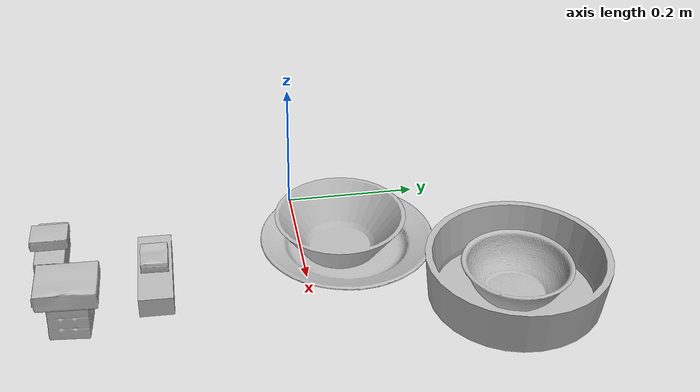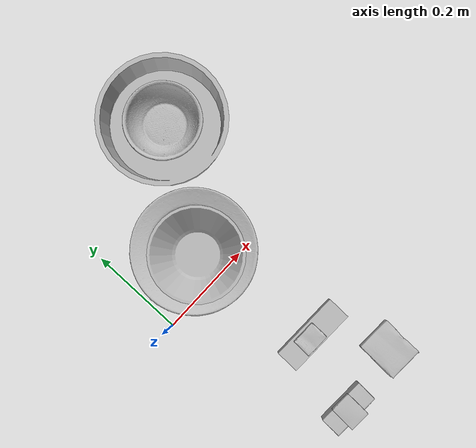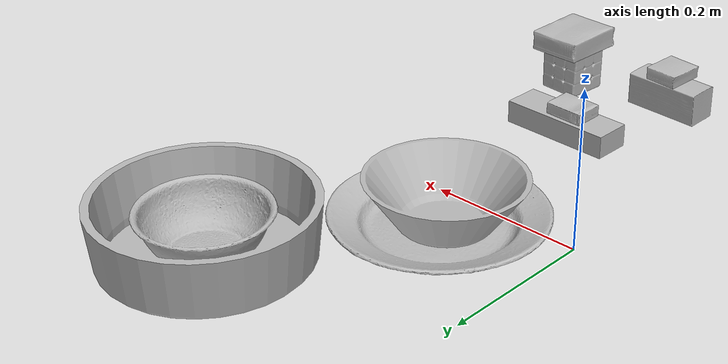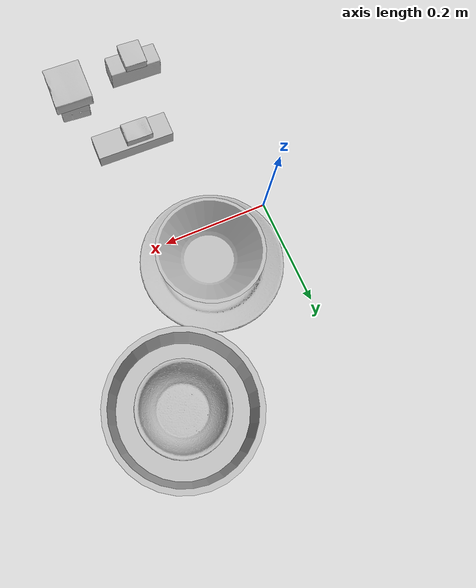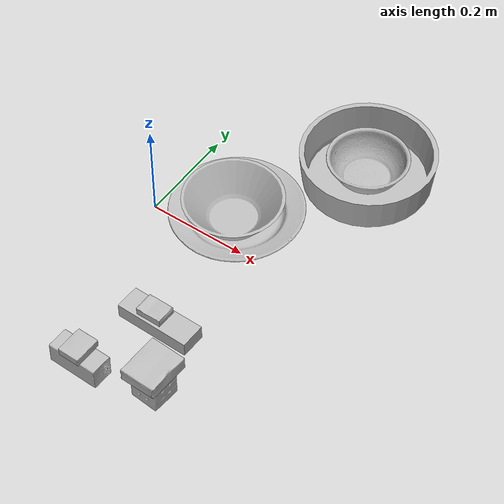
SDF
<?xml version="1.0" ?>
<sdf version="1.4">
  <world name="default">
    <light name="light1" type="point">
      <pose>0 0 1 0 0 0</pose>
      <diffuse>3 3 3 1</diffuse>
      <specular>3 3 3 1</specular>
    </light>
    <light name="light2" type="point">
      <pose>0 0.5 2 0 0 0</pose>
      <diffuse>1 1 1 1</diffuse>
      <specular>1 1 1 1</specular>
    </light>
    <light name="light3" type="point">
      <pose>0 0.5 2 0 0 0</pose>
      <diffuse>3 3 3 1</diffuse>
      <specular>3 3 3 1</specular>
    </light>
    <scene>
      <ambient>0.7 0.7 0.7</ambient>
    </scene>
    <model name="box1">
      <link name="link_box1">
        <collision name="default">
          <geometry>
            <mesh>
              <uri>model://rubiks_cube/collision_meshes/collision.obj</uri>
              <scale>1.0 1.0 1.0</scale>
            </mesh>
          </geometry>
          <surface>
            <friction>
              <ode>
                <mu>0.5</mu>
                <mu2>0.5</mu2>
              </ode>
            </friction>
          </surface>
        </collision>
        <visual name="default">
          <geometry>
            <mesh>
              <uri>model://rubiks_cube/visual_meshes/visual.dae</uri>
              <scale>1.0 1.0 1.0</scale>
            </mesh>
          </geometry>
        </visual>
        <inertial>
          <mass>0.14937607944011688</mass>
          <pose>2.6721041649580002e-05 5.256967051536776e-05 -7.264316082000732e-06 -0.054671979216720346 -0.0981390543553378 -0.03445400726577695</pose>
          <inertia>
            <ixx>8.254031e-05</ixx>
            <iyy>8.2155384e-05</iyy>
            <izz>8.32243e-05</izz>
            <ixy>0</ixy>
            <ixz>0</ixz>
            <iyz>0</iyz>
          </inertia>
        </inertial>
      </link>
      <pose>0.2599208354949951 -0.34022393822669983 0.02867903746664524 4.446877179510083e-07 2.785172341574363e-06 -0.0465839140637134</pose>
    </model>
    <model name="box11">
      <link name="link_box11">
        <collision name="default">
          <geometry>
            <mesh>
              <uri>model://gelatin_box/collision_meshes/collision.obj</uri>
              <scale>1.0 1.0 1.0</scale>
            </mesh>
          </geometry>
          <surface>
            <friction>
              <ode>
                <mu>0.5</mu>
                <mu2>0.5</mu2>
              </ode>
            </friction>
          </surface>
        </collision>
        <visual name="default">
          <geometry>
            <mesh>
              <uri>model://gelatin_box/visual_meshes/visual.dae</uri>
              <scale>1.0 1.0 1.0</scale>
            </mesh>
          </geometry>
        </visual>
        <inertial>
          <mass>0.1927502304315567</mass>
          <pose>0.0004319618456065655 0.00011156871914863586 -0.00036403213744051754 -0.0010503718519204429 -0.00475581822657324 0.016440557608202722</pose>
          <inertia>
            <ixx>0.00013606594</ixx>
            <iyy>9.7191194e-05</iyy>
            <izz>0.00020712269</izz>
            <ixy>0</ixy>
            <ixz>0</ixz>
            <iyz>0</iyz>
          </inertia>
        </inertial>
      </link>
      <pose>0.2600374221801758 -0.33995646238327026 0.07283143699169159 -0.0005833311945425021 0.006985240778707051 -0.04659295625592089</pose>
    </model>
    <model name="box2">
      <link name="link_box2">
        <collision name="default">
          <geometry>
            <mesh>
              <uri>model://jenga/collision_meshes/collision.obj</uri>
              <scale>1.0 1.0 1.0</scale>
            </mesh>
          </geometry>
          <surface>
            <friction>
              <ode>
                <mu>0.5</mu>
                <mu2>0.5</mu2>
              </ode>
            </friction>
          </surface>
        </collision>
        <visual name="default">
          <geometry>
            <mesh>
              <uri>model://jenga/visual_meshes/visual.dae</uri>
              <scale>1.0 1.0 1.0</scale>
            </mesh>
          </geometry>
        </visual>
        <inertial>
          <mass>0.17753760516643524</mass>
          <pose>-2.5028555228345795e-07 -0.00010250010382151231 -4.0923401684267446e-05 0.0 -7.342155186052628e-07 0.0</pose>
          <inertia>
            <ixx>4.912897e-05</ixx>
            <iyy>0.00033289654</iyy>
            <izz>0.00035539534</izz>
            <ixy>0</ixy>
            <ixz>0</ixz>
            <iyz>0</iyz>
          </inertia>
        </inertial>
      </link>
      <pose>0.18000265955924988 -0.2198975533246994 0.014999995939433575 2.435761243996739e-07 7.128939529699232e-08 -0.021372315145671686</pose>
    </model>
    <model name="box21">
      <link name="link_box21">
        <collision name="default">
          <geometry>
            <mesh>
              <uri>model://cracker_box/collision_meshes/collision.obj</uri>
              <scale>0.25 0.25 0.25</scale>
            </mesh>
          </geometry>
          <surface>
            <friction>
              <ode>
                <mu>0.5</mu>
                <mu2>0.5</mu2>
              </ode>
            </friction>
          </surface>
        </collision>
        <visual name="default">
          <geometry>
            <mesh>
              <uri>model://cracker_box/visual_meshes/visual.dae</uri>
              <scale>0.25 0.25 0.25</scale>
            </mesh>
          </geometry>
        </visual>
        <inertial>
          <mass>0.032025858759880066</mass>
          <pose>0.00023660347505938262 6.358561950037256e-05 -0.0004257383698131889 -0.0003162079452709603 -0.01110648960005095 0.0025467945380896087</pose>
          <inertia>
            <ixx>5.091218e-06</ixx>
            <iyy>8.406602e-06</iyy>
            <izz>1.1996991e-05</izz>
            <ixy>0</ixy>
            <ixz>0</ixz>
            <iyz>0</iyz>
          </inertia>
        </inertial>
      </link>
      <pose>0.1699366271495819 -0.2198486477136612 0.039120424538850784 -0.01178571589108251 -0.007366212481617074 -0.021243772868618026</pose>
    </model>
    <model name="box3">
      <link name="link_box3">
        <collision name="default">
          <geometry>
            <mesh>
              <uri>model://wood_block/collision_meshes/collision.obj</uri>
              <scale>0.5 0.5 0.5</scale>
            </mesh>
          </geometry>
          <surface>
            <friction>
              <ode>
                <mu>0.5</mu>
                <mu2>0.5</mu2>
              </ode>
            </friction>
          </surface>
        </collision>
        <visual name="default">
          <geometry>
            <mesh>
              <uri>model://wood_block/visual_meshes/visual.dae</uri>
              <scale>0.5 0.5 0.5</scale>
            </mesh>
          </geometry>
        </visual>
        <inertial>
          <mass>0.12936852872371674</mass>
          <pose>-2.9066577553749084e-06 -0.00028540470520965755 0.00013204290007706732 -0.052209755292171825 -0.0051926950820086835 -0.006861377939779924</pose>
          <inertia>
            <ixx>4.327867e-05</ixx>
            <iyy>0.00013671734</iyy>
            <izz>0.00013620593</izz>
            <ixy>0</ixy>
            <ixz>0</ixz>
            <iyz>0</iyz>
          </inertia>
        </inertial>
      </link>
      <pose>0.11982366442680359 -0.3691880404949188 0.02252691425383091 -0.015970739732746576 -0.0004516036100208362 -0.03144848989248134</pose>
    </model>
    <model name="box31">
      <link name="link_box31">
        <collision name="default">
          <geometry>
            <mesh>
              <uri>model://pudding_box/collision_meshes/collision.obj</uri>
              <scale>0.5 0.5 0.5</scale>
            </mesh>
          </geometry>
          <surface>
            <friction>
              <ode>
                <mu>0.5</mu>
                <mu2>0.5</mu2>
              </ode>
            </friction>
          </surface>
        </collision>
        <visual name="default">
          <geometry>
            <mesh>
              <uri>model://pudding_box/visual_meshes/visual.dae</uri>
              <scale>0.5 0.5 0.5</scale>
            </mesh>
          </geometry>
        </visual>
        <inertial>
          <mass>0.02777985855937004</mass>
          <pose>0.00024474109522998333 0.00040339428232982755 -0.0002594413817860186 0.005213100847255284 -0.006603800106148706 0.020079825159203687</pose>
          <inertia>
            <ixx>7.850925e-06</ixx>
            <iyy>5.282159e-06</iyy>
            <izz>1.1593943e-05</izz>
            <ixy>0</ixy>
            <ixz>0</ixz>
            <iyz>0</iyz>
          </inertia>
        </inertial>
      </link>
      <pose>0.11929228156805038 -0.3694605231285095 0.05519638955593109 0.006022928750140939 -0.017812746305693697 -0.04147978861945679</pose>
    </model>
    <model name="plate1">
      <link name="link_plate1">
        <collision name="default">
          <geometry>
            <mesh>
              <uri>model://plate/collision_meshes/collision.obj</uri>
              <scale>1.0 1.0 1.0</scale>
            </mesh>
          </geometry>
          <surface>
            <friction>
              <ode>
                <mu>0.5</mu>
                <mu2>0.5</mu2>
              </ode>
            </friction>
          </surface>
        </collision>
        <visual name="default">
          <geometry>
            <mesh>
              <uri>model://plate/visual_meshes/visual.dae</uri>
              <scale>1.0 1.0 1.0</scale>
            </mesh>
          </geometry>
        </visual>
        <inertial>
          <mass>0.18243028223514557</mass>
          <pose>-0.0006044635083526373 0.00027825916185975075 -0.0010561967501416802 0.002218802985991306 -0.003225472580220492 0.4526054178664253</pose>
          <inertia>
            <ixx>0.00085341244</ixx>
            <iyy>0.00084524986</iyy>
            <izz>0.0016691468</izz>
            <ixy>0</ixy>
            <ixz>0</ixz>
            <iyz>0</iyz>
          </inertia>
        </inertial>
      </link>
      <pose>0.1400047391653061 0.07000098377466202 0.013733040541410446 -3.878831532834701e-08 -6.658960348465419e-07 0.08512611581242865</pose>
    </model>
    <model name="bowl1">
      <link name="link_bowl1">
        <collision name="default">
          <geometry>
            <mesh>
              <uri>model://bowl_a/collision_meshes/collision.obj</uri>
              <scale>1.0 1.0 1.0</scale>
            </mesh>
          </geometry>
          <surface>
            <friction>
              <ode>
                <mu>0.5</mu>
                <mu2>0.5</mu2>
              </ode>
            </friction>
          </surface>
        </collision>
        <visual name="default">
          <geometry>
            <mesh>
              <uri>model://bowl_a/visual_meshes/visual.dae</uri>
              <scale>1.0 1.0 1.0</scale>
            </mesh>
          </geometry>
        </visual>
        <inertial>
          <mass>0.33530884981155396</mass>
          <pose>0.00027867525932379067 4.7312179958680645e-05 -0.0013765293406322598 -0.0009805353119733814 -0.0010938238033148682 -0.19123781325276382</pose>
          <inertia>
            <ixx>0.0009546399</ixx>
            <iyy>0.0009605007</iyy>
            <izz>0.0016978635</izz>
            <ixy>0</ixy>
            <ixz>0</ixz>
            <iyz>0</iyz>
          </inertia>
        </inertial>
      </link>
      <pose>0.14001427590847015 0.05967828258872032 0.034685373306274414 0.010703904708727415 0.0019067158307090673 -0.17827670599976564</pose>
    </model>
    <model name="plate2">
      <link name="link_plate2">
        <collision name="default">
          <geometry>
            <mesh>
              <uri>model://pan_tefal/collision_meshes/collision.obj</uri>
              <scale>1.0 1.0 1.0</scale>
            </mesh>
          </geometry>
          <surface>
            <friction>
              <ode>
                <mu>0.5</mu>
                <mu2>0.5</mu2>
              </ode>
            </friction>
          </surface>
        </collision>
        <visual name="default">
          <geometry>
            <mesh>
              <uri>model://pan_tefal/visual_meshes/visual.dae</uri>
              <scale>1.0 1.0 1.0</scale>
            </mesh>
          </geometry>
        </visual>
        <inertial>
          <mass>1.3054066896438599</mass>
          <pose>-0.00018001779972109944 3.2791245757834986e-05 -0.008514936082065105 0.0008190347553724757 -0.0003301394488099971 -0.33186691456643896</pose>
          <inertia>
            <ixx>0.00901116</ixx>
            <iyy>0.009069256</iyy>
            <izz>0.016587809</izz>
            <ixy>0</ixy>
            <ixz>0</ixz>
            <iyz>0</iyz>
          </inertia>
        </inertial>
      </link>
      <pose>0.28999602794647217 0.2900259792804718 0.037985995411872864 0.00035674109714938055 0.0003527434923297694 0.03715993061523268</pose>
    </model>
    <model name="bowl2">
      <link name="link_bowl2">
        <collision name="default">
          <geometry>
            <mesh>
              <uri>model://bowl/collision_meshes/collision.obj</uri>
              <scale>1.0 1.0 1.0</scale>
            </mesh>
          </geometry>
          <surface>
            <friction>
              <ode>
                <mu>0.5</mu>
                <mu2>0.5</mu2>
              </ode>
            </friction>
          </surface>
        </collision>
        <visual name="default">
          <geometry>
            <mesh>
              <uri>model://bowl/visual_meshes/visual.dae</uri>
              <scale>1.0 1.0 1.0</scale>
            </mesh>
          </geometry>
        </visual>
        <inertial>
          <mass>0.1096961572766304</mass>
          <pose>0.00020445209520403296 -0.0010302049340680242 -0.0008042648551054299 -0.015764066902751193 0.014546817497496476 0.7140421604823016</pose>
          <inertia>
            <ixx>0.00025198064</ixx>
            <iyy>0.00024635042</iyy>
            <izz>0.0004239182</izz>
            <ixy>0</ixy>
            <ixz>0</ixz>
            <iyz>0</iyz>
          </inertia>
        </inertial>
      </link>
      <pose>0.2897797226905823 0.29017433524131775 0.035456571727991104 -0.002007621676516032 -0.0008064397596072294 0.02708405568701843</pose>
    </model>
  </world>
</sdf>
